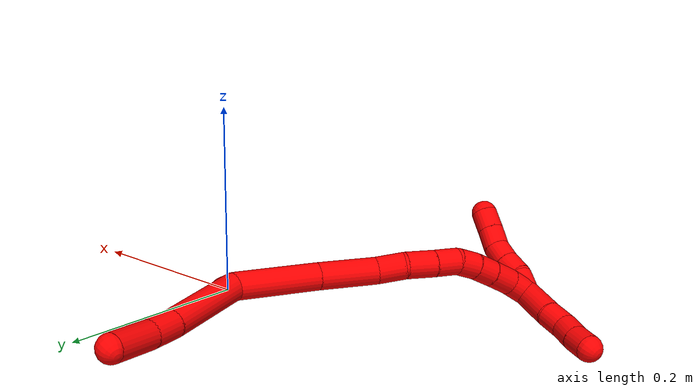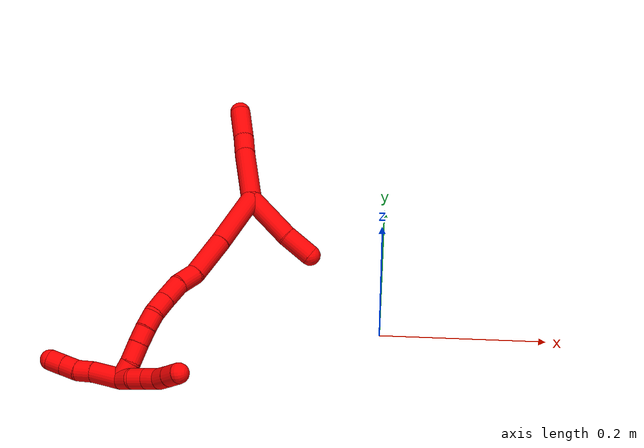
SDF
<sdf version="1.7">
 <world name="default">
  <model name="2">
   <static>0</static>
   <link name="2">
    <collision name="collision-cylinder-e_1_2_8">
     <pose>0.01176 0.036338 -0.012942 -1.91293 0.295919 -0.416475</pose>
     <geometry><cylinder><radius>0.0125</radius><length>0.080654</length></cylinder></geometry>
     <surface>
      <friction><ode><mu>1.16</mu><mu2>1.16</mu2><slip1>0</slip1><slip2>0</slip2></ode></friction>
      <contact><ode><kp>1e+06</kp><kd>1</kd><max_vel>0</max_vel><min_depth>0.001</min_depth></ode></contact>
     </surface>
    </collision>
    <visual name="visual-cylinder-e_1_2_8">
     <pose>0.01176 0.036338 -0.012942 -1.91293 0.295919 -0.416475</pose>
     <geometry><cylinder><radius>0.0125</radius><length>0.080654</length></cylinder></geometry>
     <material><ambient>1 0 0 1</ambient></material>
    </visual>
    <collision name="collision-cylinder-e_2_8_9">
     <pose>0.026761 0.085131 -0.029377 -1.84434 0.245491 -0.322657</pose>
     <geometry><cylinder><radius>0.0125</radius><length>0.026669</length></cylinder></geometry>
     <surface>
      <friction><ode><mu>1.16</mu><mu2>1.16</mu2><slip1>0</slip1><slip2>0</slip2></ode></friction>
      <contact><ode><kp>1e+06</kp><kd>1</kd><max_vel>0</max_vel><min_depth>0.001</min_depth></ode></contact>
     </surface>
    </collision>
    <visual name="visual-cylinder-e_2_8_9">
     <pose>0.026761 0.085131 -0.029377 -1.84434 0.245491 -0.322657</pose>
     <geometry><cylinder><radius>0.0125</radius><length>0.026669</length></cylinder></geometry>
     <material><ambient>1 0 0 1</ambient></material>
    </visual>
    <collision name="collision-cylinder-e_3_9_6">
     <pose>0.032804 0.117959 -0.038559 -1.84302 0.131714 -0.173335</pose>
     <geometry><cylinder><radius>0.0125</radius><length>0.042677</length></cylinder></geometry>
     <surface>
      <friction><ode><mu>1.16</mu><mu2>1.16</mu2><slip1>0</slip1><slip2>0</slip2></ode></friction>
      <contact><ode><kp>1e+06</kp><kd>1</kd><max_vel>0</max_vel><min_depth>0.001</min_depth></ode></contact>
     </surface>
    </collision>
    <visual name="visual-cylinder-e_3_9_6">
     <pose>0.032804 0.117959 -0.038559 -1.84302 0.131714 -0.173335</pose>
     <geometry><cylinder><radius>0.0125</radius><length>0.042677</length></cylinder></geometry>
     <material><ambient>1 0 0 1</ambient></material>
    </visual>
    <collision name="collision-cylinder-e_1_2_10">
     <pose>0.01263 -0.020689 0.02005 0.801074 0.41316 0.177011</pose>
     <geometry><cylinder><radius>0.0125</radius><length>0.062914</length></cylinder></geometry>
     <surface>
      <friction><ode><mu>1.16</mu><mu2>1.16</mu2><slip1>0</slip1><slip2>0</slip2></ode></friction>
      <contact><ode><kp>1e+06</kp><kd>1</kd><max_vel>0</max_vel><min_depth>0.001</min_depth></ode></contact>
     </surface>
    </collision>
    <visual name="visual-cylinder-e_1_2_10">
     <pose>0.01263 -0.020689 0.02005 0.801074 0.41316 0.177011</pose>
     <geometry><cylinder><radius>0.0125</radius><length>0.062914</length></cylinder></geometry>
     <material><ambient>1 0 0 1</ambient></material>
    </visual>
    <collision name="collision-cylinder-e_2_10_5">
     <pose>0.034408 -0.051385 0.052749 0.669351 0.515896 0.182982</pose>
     <geometry><cylinder><radius>0.0125</radius><length>0.037086</length></cylinder></geometry>
     <surface>
      <friction><ode><mu>1.16</mu><mu2>1.16</mu2><slip1>0</slip1><slip2>0</slip2></ode></friction>
      <contact><ode><kp>1e+06</kp><kd>1</kd><max_vel>0</max_vel><min_depth>0.001</min_depth></ode></contact>
     </surface>
    </collision>
    <visual name="visual-cylinder-e_2_10_5">
     <pose>0.034408 -0.051385 0.052749 0.669351 0.515896 0.182982</pose>
     <geometry><cylinder><radius>0.0125</radius><length>0.037086</length></cylinder></geometry>
     <material><ambient>1 0 0 1</ambient></material>
    </visual>
    <collision name="collision-cylinder-e_1_2_11">
     <pose>-0.015167 -0.034398 -0.010821 1.87558 -0.398156 -0.536669</pose>
     <geometry><cylinder><radius>0.0125</radius><length>0.078239</length></cylinder></geometry>
     <surface>
      <friction><ode><mu>1.16</mu><mu2>1.16</mu2><slip1>0</slip1><slip2>0</slip2></ode></friction>
      <contact><ode><kp>1e+06</kp><kd>1</kd><max_vel>0</max_vel><min_depth>0.001</min_depth></ode></contact>
     </surface>
    </collision>
    <visual name="visual-cylinder-e_1_2_11">
     <pose>-0.015167 -0.034398 -0.010821 1.87558 -0.398156 -0.536669</pose>
     <geometry><cylinder><radius>0.0125</radius><length>0.078239</length></cylinder></geometry>
     <material><ambient>1 0 0 1</ambient></material>
    </visual>
    <collision name="collision-cylinder-e_2_11_12">
     <pose>-0.041338 -0.093215 -0.030591 1.92206 -0.40023 -0.565158</pose>
     <geometry><cylinder><radius>0.0125</radius><length>0.056478</length></cylinder></geometry>
     <surface>
      <friction><ode><mu>1.16</mu><mu2>1.16</mu2><slip1>0</slip1><slip2>0</slip2></ode></friction>
      <contact><ode><kp>1e+06</kp><kd>1</kd><max_vel>0</max_vel><min_depth>0.001</min_depth></ode></contact>
     </surface>
    </collision>
    <visual name="visual-cylinder-e_2_11_12">
     <pose>-0.041338 -0.093215 -0.030591 1.92206 -0.40023 -0.565158</pose>
     <geometry><cylinder><radius>0.0125</radius><length>0.056478</length></cylinder></geometry>
     <material><ambient>1 0 0 1</ambient></material>
    </visual>
    <collision name="collision-cylinder-e_3_12_13">
     <pose>-0.059923 -0.126839 -0.045637 2.15586 -0.601767 -1.04783</pose>
     <geometry><cylinder><radius>0.0125</radius><length>0.026789</length></cylinder></geometry>
     <surface>
      <friction><ode><mu>1.16</mu><mu2>1.16</mu2><slip1>0</slip1><slip2>0</slip2></ode></friction>
      <contact><ode><kp>1e+06</kp><kd>1</kd><max_vel>0</max_vel><min_depth>0.001</min_depth></ode></contact>
     </surface>
    </collision>
    <visual name="visual-cylinder-e_3_12_13">
     <pose>-0.059923 -0.126839 -0.045637 2.15586 -0.601767 -1.04783</pose>
     <geometry><cylinder><radius>0.0125</radius><length>0.026789</length></cylinder></geometry>
     <material><ambient>1 0 0 1</ambient></material>
    </visual>
    <collision name="collision-cylinder-e_4_13_14">
     <pose>-0.073034 -0.148003 -0.05691 1.97922 -0.401242 -0.600457</pose>
     <geometry><cylinder><radius>0.0125</radius><length>0.028309</length></cylinder></geometry>
     <surface>
      <friction><ode><mu>1.16</mu><mu2>1.16</mu2><slip1>0</slip1><slip2>0</slip2></ode></friction>
      <contact><ode><kp>1e+06</kp><kd>1</kd><max_vel>0</max_vel><min_depth>0.001</min_depth></ode></contact>
     </surface>
    </collision>
    <visual name="visual-cylinder-e_4_13_14">
     <pose>-0.073034 -0.148003 -0.05691 1.97922 -0.401242 -0.600457</pose>
     <geometry><cylinder><radius>0.0125</radius><length>0.028309</length></cylinder></geometry>
     <material><ambient>1 0 0 1</ambient></material>
    </visual>
    <collision name="collision-cylinder-e_5_14_15">
     <pose>-0.08323 -0.170119 -0.065848 1.92559 -0.406911 -0.576386</pose>
     <geometry><cylinder><radius>0.0125</radius><length>0.02359</length></cylinder></geometry>
     <surface>
      <friction><ode><mu>1.16</mu><mu2>1.16</mu2><slip1>0</slip1><slip2>0</slip2></ode></friction>
      <contact><ode><kp>1e+06</kp><kd>1</kd><max_vel>0</max_vel><min_depth>0.001</min_depth></ode></contact>
     </surface>
    </collision>
    <visual name="visual-cylinder-e_5_14_15">
     <pose>-0.08323 -0.170119 -0.065848 1.92559 -0.406911 -0.576386</pose>
     <geometry><cylinder><radius>0.0125</radius><length>0.02359</length></cylinder></geometry>
     <material><ambient>1 0 0 1</ambient></material>
    </visual>
    <collision name="collision-cylinder-e_6_15_16">
     <pose>-0.088644 -0.189527 -0.073448 1.96388 -0.074318 -0.111207</pose>
     <geometry><cylinder><radius>0.0125</radius><length>0.020085</length></cylinder></geometry>
     <surface>
      <friction><ode><mu>1.16</mu><mu2>1.16</mu2><slip1>0</slip1><slip2>0</slip2></ode></friction>
      <contact><ode><kp>1e+06</kp><kd>1</kd><max_vel>0</max_vel><min_depth>0.001</min_depth></ode></contact>
     </surface>
    </collision>
    <visual name="visual-cylinder-e_6_15_16">
     <pose>-0.088644 -0.189527 -0.073448 1.96388 -0.074318 -0.111207</pose>
     <geometry><cylinder><radius>0.0125</radius><length>0.020085</length></cylinder></geometry>
     <material><ambient>1 0 0 1</ambient></material>
    </visual>
    <collision name="collision-cylinder-e_7_16_17">
     <pose>-0.08881 -0.208045 -0.08119 1.96977 0.05755 0.086687</pose>
     <geometry><cylinder><radius>0.0125</radius><length>0.020147</length></cylinder></geometry>
     <surface>
      <friction><ode><mu>1.16</mu><mu2>1.16</mu2><slip1>0</slip1><slip2>0</slip2></ode></friction>
      <contact><ode><kp>1e+06</kp><kd>1</kd><max_vel>0</max_vel><min_depth>0.001</min_depth></ode></contact>
     </surface>
    </collision>
    <visual name="visual-cylinder-e_7_16_17">
     <pose>-0.08881 -0.208045 -0.08119 1.96977 0.05755 0.086687</pose>
     <geometry><cylinder><radius>0.0125</radius><length>0.020147</length></cylinder></geometry>
     <material><ambient>1 0 0 1</ambient></material>
    </visual>
    <collision name="collision-cylinder-e_8_17_18">
     <pose>-0.087143 -0.228651 -0.089566 1.94625 0.089013 0.130663</pose>
     <geometry><cylinder><radius>0.0125</radius><length>0.024472</length></cylinder></geometry>
     <surface>
      <friction><ode><mu>1.16</mu><mu2>1.16</mu2><slip1>0</slip1><slip2>0</slip2></ode></friction>
      <contact><ode><kp>1e+06</kp><kd>1</kd><max_vel>0</max_vel><min_depth>0.001</min_depth></ode></contact>
     </surface>
    </collision>
    <visual name="visual-cylinder-e_8_17_18">
     <pose>-0.087143 -0.228651 -0.089566 1.94625 0.089013 0.130663</pose>
     <geometry><cylinder><radius>0.0125</radius><length>0.024472</length></cylinder></geometry>
     <material><ambient>1 0 0 1</ambient></material>
    </visual>
    <collision name="collision-cylinder-e_9_18_1">
     <pose>-0.084353 -0.249241 -0.099629 2.1146 0.156144 0.275675</pose>
     <geometry><cylinder><radius>0.0125</radius><length>0.02189</length></cylinder></geometry>
     <surface>
      <friction><ode><mu>1.16</mu><mu2>1.16</mu2><slip1>0</slip1><slip2>0</slip2></ode></friction>
      <contact><ode><kp>1e+06</kp><kd>1</kd><max_vel>0</max_vel><min_depth>0.001</min_depth></ode></contact>
     </surface>
    </collision>
    <visual name="visual-cylinder-e_9_18_1">
     <pose>-0.084353 -0.249241 -0.099629 2.1146 0.156144 0.275675</pose>
     <geometry><cylinder><radius>0.0125</radius><length>0.02189</length></cylinder></geometry>
     <material><ambient>1 0 0 1</ambient></material>
    </visual>
    <collision name="collision-cylinder-e_1_1_19">
     <pose>-0.086666 -0.260288 -0.096242 0.197178 -0.413081 -0.041443</pose>
     <geometry><cylinder><radius>0.0125</radius><length>0.02</length></cylinder></geometry>
     <surface>
      <friction><ode><mu>1.16</mu><mu2>1.16</mu2><slip1>0</slip1><slip2>0</slip2></ode></friction>
      <contact><ode><kp>1e+06</kp><kd>1</kd><max_vel>0</max_vel><min_depth>0.001</min_depth></ode></contact>
     </surface>
    </collision>
    <visual name="visual-cylinder-e_1_1_19">
     <pose>-0.086666 -0.260288 -0.096242 0.197178 -0.413081 -0.041443</pose>
     <geometry><cylinder><radius>0.0125</radius><length>0.02</length></cylinder></geometry>
     <material><ambient>1 0 0 1</ambient></material>
    </visual>
    <collision name="collision-cylinder-e_2_19_20">
     <pose>-0.09188 -0.263072 -0.077382 0.099836 -0.120248 -0.006015</pose>
     <geometry><cylinder><radius>0.0125</radius><length>0.02</length></cylinder></geometry>
     <surface>
      <friction><ode><mu>1.16</mu><mu2>1.16</mu2><slip1>0</slip1><slip2>0</slip2></ode></friction>
      <contact><ode><kp>1e+06</kp><kd>1</kd><max_vel>0</max_vel><min_depth>0.001</min_depth></ode></contact>
     </surface>
    </collision>
    <visual name="visual-cylinder-e_2_19_20">
     <pose>-0.09188 -0.263072 -0.077382 0.099836 -0.120248 -0.006015</pose>
     <geometry><cylinder><radius>0.0125</radius><length>0.02</length></cylinder></geometry>
     <material><ambient>1 0 0 1</ambient></material>
    </visual>
    <collision name="collision-cylinder-e_3_20_21">
     <pose>-0.095307 -0.265647 -0.057885 0.163352 -0.22462 -0.018464</pose>
     <geometry><cylinder><radius>0.0125</radius><length>0.02</length></cylinder></geometry>
     <surface>
      <friction><ode><mu>1.16</mu><mu2>1.16</mu2><slip1>0</slip1><slip2>0</slip2></ode></friction>
      <contact><ode><kp>1e+06</kp><kd>1</kd><max_vel>0</max_vel><min_depth>0.001</min_depth></ode></contact>
     </surface>
    </collision>
    <visual name="visual-cylinder-e_3_20_21">
     <pose>-0.095307 -0.265647 -0.057885 0.163352 -0.22462 -0.018464</pose>
     <geometry><cylinder><radius>0.0125</radius><length>0.02</length></cylinder></geometry>
     <material><ambient>1 0 0 1</ambient></material>
    </visual>
    <collision name="collision-cylinder-e_4_21_22">
     <pose>-0.102679 -0.268006 -0.039726 0.090373 -0.540429 -0.025048</pose>
     <geometry><cylinder><radius>0.0125</radius><length>0.02</length></cylinder></geometry>
     <surface>
      <friction><ode><mu>1.16</mu><mu2>1.16</mu2><slip1>0</slip1><slip2>0</slip2></ode></friction>
      <contact><ode><kp>1e+06</kp><kd>1</kd><max_vel>0</max_vel><min_depth>0.001</min_depth></ode></contact>
     </surface>
    </collision>
    <visual name="visual-cylinder-e_4_21_22">
     <pose>-0.102679 -0.268006 -0.039726 0.090373 -0.540429 -0.025048</pose>
     <geometry><cylinder><radius>0.0125</radius><length>0.02</length></cylinder></geometry>
     <material><ambient>1 0 0 1</ambient></material>
    </visual>
    <collision name="collision-cylinder-e_5_22_4">
     <pose>-0.112845 -0.269327 -0.022555 0.06327 -0.526006 -0.01704</pose>
     <geometry><cylinder><radius>0.0125</radius><length>0.02</length></cylinder></geometry>
     <surface>
      <friction><ode><mu>1.16</mu><mu2>1.16</mu2><slip1>0</slip1><slip2>0</slip2></ode></friction>
      <contact><ode><kp>1e+06</kp><kd>1</kd><max_vel>0</max_vel><min_depth>0.001</min_depth></ode></contact>
     </surface>
    </collision>
    <visual name="visual-cylinder-e_5_22_4">
     <pose>-0.112845 -0.269327 -0.022555 0.06327 -0.526006 -0.01704</pose>
     <geometry><cylinder><radius>0.0125</radius><length>0.02</length></cylinder></geometry>
     <material><ambient>1 0 0 1</ambient></material>
    </visual>
    <collision name="collision-cylinder-e_1_1_23">
     <pose>-0.082812 -0.253069 -0.123827 -2.85785 -0.008289 0.058017</pose>
     <geometry><cylinder><radius>0.0125</radius><length>0.038758</length></cylinder></geometry>
     <surface>
      <friction><ode><mu>1.16</mu><mu2>1.16</mu2><slip1>0</slip1><slip2>0</slip2></ode></friction>
      <contact><ode><kp>1e+06</kp><kd>1</kd><max_vel>0</max_vel><min_depth>0.001</min_depth></ode></contact>
     </surface>
    </collision>
    <visual name="visual-cylinder-e_1_1_23">
     <pose>-0.082812 -0.253069 -0.123827 -2.85785 -0.008289 0.058017</pose>
     <geometry><cylinder><radius>0.0125</radius><length>0.038758</length></cylinder></geometry>
     <material><ambient>1 0 0 1</ambient></material>
    </visual>
    <collision name="collision-cylinder-e_2_23_24">
     <pose>-0.08324 -0.24622 -0.152934 -3.00681 -0.025184 0.368903</pose>
     <geometry><cylinder><radius>0.0125</radius><length>0.021206</length></cylinder></geometry>
     <surface>
      <friction><ode><mu>1.16</mu><mu2>1.16</mu2><slip1>0</slip1><slip2>0</slip2></ode></friction>
      <contact><ode><kp>1e+06</kp><kd>1</kd><max_vel>0</max_vel><min_depth>0.001</min_depth></ode></contact>
     </surface>
    </collision>
    <visual name="visual-cylinder-e_2_23_24">
     <pose>-0.08324 -0.24622 -0.152934 -3.00681 -0.025184 0.368903</pose>
     <geometry><cylinder><radius>0.0125</radius><length>0.021206</length></cylinder></geometry>
     <material><ambient>1 0 0 1</ambient></material>
    </visual>
    <collision name="collision-cylinder-e_3_24_25">
     <pose>-0.083587 -0.241009 -0.172696 -2.75338 -0.008008 0.040731</pose>
     <geometry><cylinder><radius>0.0125</radius><length>0.020007</length></cylinder></geometry>
     <surface>
      <friction><ode><mu>1.16</mu><mu2>1.16</mu2><slip1>0</slip1><slip2>0</slip2></ode></friction>
      <contact><ode><kp>1e+06</kp><kd>1</kd><max_vel>0</max_vel><min_depth>0.001</min_depth></ode></contact>
     </surface>
    </collision>
    <visual name="visual-cylinder-e_3_24_25">
     <pose>-0.083587 -0.241009 -0.172696 -2.75338 -0.008008 0.040731</pose>
     <geometry><cylinder><radius>0.0125</radius><length>0.020007</length></cylinder></geometry>
     <material><ambient>1 0 0 1</ambient></material>
    </visual>
    <collision name="collision-cylinder-e_4_25_3">
     <pose>-0.084849 -0.233622 -0.191225 -2.77117 -0.11833 0.612422</pose>
     <geometry><cylinder><radius>0.0125</radius><length>0.020029</length></cylinder></geometry>
     <surface>
      <friction><ode><mu>1.16</mu><mu2>1.16</mu2><slip1>0</slip1><slip2>0</slip2></ode></friction>
      <contact><ode><kp>1e+06</kp><kd>1</kd><max_vel>0</max_vel><min_depth>0.001</min_depth></ode></contact>
     </surface>
    </collision>
    <visual name="visual-cylinder-e_4_25_3">
     <pose>-0.084849 -0.233622 -0.191225 -2.77117 -0.11833 0.612422</pose>
     <geometry><cylinder><radius>0.0125</radius><length>0.020029</length></cylinder></geometry>
     <material><ambient>1 0 0 1</ambient></material>
    </visual>
    <collision name="collision-sphere-3">
     <pose>-0.086031 -0.230022 -0.200495 0 -0 0</pose>
     <geometry><sphere><radius>0.0125</radius></sphere></geometry>
     <surface>
      <friction><ode><mu>1.16</mu><mu2>1.16</mu2><slip1>0</slip1><slip2>0</slip2></ode></friction>
      <contact><ode><kp>1e+06</kp><kd>1</kd><max_vel>0</max_vel><min_depth>0.001</min_depth></ode></contact>
     </surface>
    </collision>
    <visual name="visual-sphere-3">
     <pose>-0.086031 -0.230022 -0.200495 0 -0 0</pose>
     <geometry><sphere><radius>0.0125</radius></sphere></geometry>
     <material><ambient>1 0 0 1</ambient></material>
    </visual>
    <collision name="collision-sphere-25">
     <pose>-0.083667 -0.237222 -0.181955 0 -0 0</pose>
     <geometry><sphere><radius>0.0125</radius></sphere></geometry>
     <surface>
      <friction><ode><mu>1.16</mu><mu2>1.16</mu2><slip1>0</slip1><slip2>0</slip2></ode></friction>
      <contact><ode><kp>1e+06</kp><kd>1</kd><max_vel>0</max_vel><min_depth>0.001</min_depth></ode></contact>
     </surface>
    </collision>
    <visual name="visual-sphere-25">
     <pose>-0.083667 -0.237222 -0.181955 0 -0 0</pose>
     <geometry><sphere><radius>0.0125</radius></sphere></geometry>
     <material><ambient>1 0 0 1</ambient></material>
    </visual>
    <collision name="collision-sphere-24">
     <pose>-0.083507 -0.244795 -0.163438 0 -0 0</pose>
     <geometry><sphere><radius>0.0125</radius></sphere></geometry>
     <surface>
      <friction><ode><mu>1.16</mu><mu2>1.16</mu2><slip1>0</slip1><slip2>0</slip2></ode></friction>
      <contact><ode><kp>1e+06</kp><kd>1</kd><max_vel>0</max_vel><min_depth>0.001</min_depth></ode></contact>
     </surface>
    </collision>
    <visual name="visual-sphere-24">
     <pose>-0.083507 -0.244795 -0.163438 0 -0 0</pose>
     <geometry><sphere><radius>0.0125</radius></sphere></geometry>
     <material><ambient>1 0 0 1</ambient></material>
    </visual>
    <collision name="collision-sphere-23">
     <pose>-0.082973 -0.247644 -0.14243 0 -0 0</pose>
     <geometry><sphere><radius>0.0125</radius></sphere></geometry>
     <surface>
      <friction><ode><mu>1.16</mu><mu2>1.16</mu2><slip1>0</slip1><slip2>0</slip2></ode></friction>
      <contact><ode><kp>1e+06</kp><kd>1</kd><max_vel>0</max_vel><min_depth>0.001</min_depth></ode></contact>
     </surface>
    </collision>
    <visual name="visual-sphere-23">
     <pose>-0.082973 -0.247644 -0.14243 0 -0 0</pose>
     <geometry><sphere><radius>0.0125</radius></sphere></geometry>
     <material><ambient>1 0 0 1</ambient></material>
    </visual>
    <collision name="collision-sphere-4">
     <pose>-0.117866 -0.269874 -0.013924 0 -0 0</pose>
     <geometry><sphere><radius>0.0125</radius></sphere></geometry>
     <surface>
      <friction><ode><mu>1.16</mu><mu2>1.16</mu2><slip1>0</slip1><slip2>0</slip2></ode></friction>
      <contact><ode><kp>1e+06</kp><kd>1</kd><max_vel>0</max_vel><min_depth>0.001</min_depth></ode></contact>
     </surface>
    </collision>
    <visual name="visual-sphere-4">
     <pose>-0.117866 -0.269874 -0.013924 0 -0 0</pose>
     <geometry><sphere><radius>0.0125</radius></sphere></geometry>
     <material><ambient>1 0 0 1</ambient></material>
    </visual>
    <collision name="collision-sphere-22">
     <pose>-0.107824 -0.26878 -0.031186 0 -0 0</pose>
     <geometry><sphere><radius>0.0125</radius></sphere></geometry>
     <surface>
      <friction><ode><mu>1.16</mu><mu2>1.16</mu2><slip1>0</slip1><slip2>0</slip2></ode></friction>
      <contact><ode><kp>1e+06</kp><kd>1</kd><max_vel>0</max_vel><min_depth>0.001</min_depth></ode></contact>
     </surface>
    </collision>
    <visual name="visual-sphere-22">
     <pose>-0.107824 -0.26878 -0.031186 0 -0 0</pose>
     <geometry><sphere><radius>0.0125</radius></sphere></geometry>
     <material><ambient>1 0 0 1</ambient></material>
    </visual>
    <collision name="collision-sphere-21">
     <pose>-0.097534 -0.267232 -0.048266 0 -0 0</pose>
     <geometry><sphere><radius>0.0125</radius></sphere></geometry>
     <surface>
      <friction><ode><mu>1.16</mu><mu2>1.16</mu2><slip1>0</slip1><slip2>0</slip2></ode></friction>
      <contact><ode><kp>1e+06</kp><kd>1</kd><max_vel>0</max_vel><min_depth>0.001</min_depth></ode></contact>
     </surface>
    </collision>
    <visual name="visual-sphere-21">
     <pose>-0.097534 -0.267232 -0.048266 0 -0 0</pose>
     <geometry><sphere><radius>0.0125</radius></sphere></geometry>
     <material><ambient>1 0 0 1</ambient></material>
    </visual>
    <collision name="collision-sphere-20">
     <pose>-0.093079 -0.264061 -0.067504 0 -0 0</pose>
     <geometry><sphere><radius>0.0125</radius></sphere></geometry>
     <surface>
      <friction><ode><mu>1.16</mu><mu2>1.16</mu2><slip1>0</slip1><slip2>0</slip2></ode></friction>
      <contact><ode><kp>1e+06</kp><kd>1</kd><max_vel>0</max_vel><min_depth>0.001</min_depth></ode></contact>
     </surface>
    </collision>
    <visual name="visual-sphere-20">
     <pose>-0.093079 -0.264061 -0.067504 0 -0 0</pose>
     <geometry><sphere><radius>0.0125</radius></sphere></geometry>
     <material><ambient>1 0 0 1</ambient></material>
    </visual>
    <collision name="collision-sphere-5">
     <pose>0.043555 -0.061393 0.065398 0 -0 0</pose>
     <geometry><sphere><radius>0.0125</radius></sphere></geometry>
     <surface>
      <friction><ode><mu>1.16</mu><mu2>1.16</mu2><slip1>0</slip1><slip2>0</slip2></ode></friction>
      <contact><ode><kp>1e+06</kp><kd>1</kd><max_vel>0</max_vel><min_depth>0.001</min_depth></ode></contact>
     </surface>
    </collision>
    <visual name="visual-sphere-5">
     <pose>0.043555 -0.061393 0.065398 0 -0 0</pose>
     <geometry><sphere><radius>0.0125</radius></sphere></geometry>
     <material><ambient>1 0 0 1</ambient></material>
    </visual>
    <collision name="collision-sphere-10">
     <pose>0.02526 -0.041377 0.0401 0 -0 0</pose>
     <geometry><sphere><radius>0.0125</radius></sphere></geometry>
     <surface>
      <friction><ode><mu>1.16</mu><mu2>1.16</mu2><slip1>0</slip1><slip2>0</slip2></ode></friction>
      <contact><ode><kp>1e+06</kp><kd>1</kd><max_vel>0</max_vel><min_depth>0.001</min_depth></ode></contact>
     </surface>
    </collision>
    <visual name="visual-sphere-10">
     <pose>0.02526 -0.041377 0.0401 0 -0 0</pose>
     <geometry><sphere><radius>0.0125</radius></sphere></geometry>
     <material><ambient>1 0 0 1</ambient></material>
    </visual>
    <collision name="collision-sphere-6">
     <pose>0.035607 0.138334 -0.044247 0 -0 0</pose>
     <geometry><sphere><radius>0.0125</radius></sphere></geometry>
     <surface>
      <friction><ode><mu>1.16</mu><mu2>1.16</mu2><slip1>0</slip1><slip2>0</slip2></ode></friction>
      <contact><ode><kp>1e+06</kp><kd>1</kd><max_vel>0</max_vel><min_depth>0.001</min_depth></ode></contact>
     </surface>
    </collision>
    <visual name="visual-sphere-6">
     <pose>0.035607 0.138334 -0.044247 0 -0 0</pose>
     <geometry><sphere><radius>0.0125</radius></sphere></geometry>
     <material><ambient>1 0 0 1</ambient></material>
    </visual>
    <collision name="collision-sphere-9">
     <pose>0.030002 0.097584 -0.032871 0 -0 0</pose>
     <geometry><sphere><radius>0.0125</radius></sphere></geometry>
     <surface>
      <friction><ode><mu>1.16</mu><mu2>1.16</mu2><slip1>0</slip1><slip2>0</slip2></ode></friction>
      <contact><ode><kp>1e+06</kp><kd>1</kd><max_vel>0</max_vel><min_depth>0.001</min_depth></ode></contact>
     </surface>
    </collision>
    <visual name="visual-sphere-9">
     <pose>0.030002 0.097584 -0.032871 0 -0 0</pose>
     <geometry><sphere><radius>0.0125</radius></sphere></geometry>
     <material><ambient>1 0 0 1</ambient></material>
    </visual>
    <collision name="collision-sphere-2">
     <geometry><sphere><radius>0.0125</radius></sphere></geometry>
     <surface>
      <friction><ode><mu>1.16</mu><mu2>1.16</mu2><slip1>0</slip1><slip2>0</slip2></ode></friction>
      <contact><ode><kp>1e+06</kp><kd>1</kd><max_vel>0</max_vel><min_depth>0.001</min_depth></ode></contact>
     </surface>
    </collision>
    <visual name="visual-sphere-2">
     <geometry><sphere><radius>0.0125</radius></sphere></geometry>
     <material><ambient>1 0 0 1</ambient></material>
    </visual>
    <collision name="collision-sphere-19">
     <pose>-0.09068 -0.262082 -0.087261 0 -0 0</pose>
     <geometry><sphere><radius>0.0125</radius></sphere></geometry>
     <surface>
      <friction><ode><mu>1.16</mu><mu2>1.16</mu2><slip1>0</slip1><slip2>0</slip2></ode></friction>
      <contact><ode><kp>1e+06</kp><kd>1</kd><max_vel>0</max_vel><min_depth>0.001</min_depth></ode></contact>
     </surface>
    </collision>
    <visual name="visual-sphere-19">
     <pose>-0.09068 -0.262082 -0.087261 0 -0 0</pose>
     <geometry><sphere><radius>0.0125</radius></sphere></geometry>
     <material><ambient>1 0 0 1</ambient></material>
    </visual>
    <collision name="collision-sphere-8">
     <pose>0.02352 0.072677 -0.025883 0 -0 0</pose>
     <geometry><sphere><radius>0.0125</radius></sphere></geometry>
     <surface>
      <friction><ode><mu>1.16</mu><mu2>1.16</mu2><slip1>0</slip1><slip2>0</slip2></ode></friction>
      <contact><ode><kp>1e+06</kp><kd>1</kd><max_vel>0</max_vel><min_depth>0.001</min_depth></ode></contact>
     </surface>
    </collision>
    <visual name="visual-sphere-8">
     <pose>0.02352 0.072677 -0.025883 0 -0 0</pose>
     <geometry><sphere><radius>0.0125</radius></sphere></geometry>
     <material><ambient>1 0 0 1</ambient></material>
    </visual>
    <collision name="collision-sphere-11">
     <pose>-0.030335 -0.068795 -0.021642 0 -0 0</pose>
     <geometry><sphere><radius>0.0125</radius></sphere></geometry>
     <surface>
      <friction><ode><mu>1.16</mu><mu2>1.16</mu2><slip1>0</slip1><slip2>0</slip2></ode></friction>
      <contact><ode><kp>1e+06</kp><kd>1</kd><max_vel>0</max_vel><min_depth>0.001</min_depth></ode></contact>
     </surface>
    </collision>
    <visual name="visual-sphere-11">
     <pose>-0.030335 -0.068795 -0.021642 0 -0 0</pose>
     <geometry><sphere><radius>0.0125</radius></sphere></geometry>
     <material><ambient>1 0 0 1</ambient></material>
    </visual>
    <collision name="collision-sphere-12">
     <pose>-0.052341 -0.117634 -0.03954 0 -0 0</pose>
     <geometry><sphere><radius>0.0125</radius></sphere></geometry>
     <surface>
      <friction><ode><mu>1.16</mu><mu2>1.16</mu2><slip1>0</slip1><slip2>0</slip2></ode></friction>
      <contact><ode><kp>1e+06</kp><kd>1</kd><max_vel>0</max_vel><min_depth>0.001</min_depth></ode></contact>
     </surface>
    </collision>
    <visual name="visual-sphere-12">
     <pose>-0.052341 -0.117634 -0.03954 0 -0 0</pose>
     <geometry><sphere><radius>0.0125</radius></sphere></geometry>
     <material><ambient>1 0 0 1</ambient></material>
    </visual>
    <collision name="collision-sphere-13">
     <pose>-0.067506 -0.136044 -0.051735 0 -0 0</pose>
     <geometry><sphere><radius>0.0125</radius></sphere></geometry>
     <surface>
      <friction><ode><mu>1.16</mu><mu2>1.16</mu2><slip1>0</slip1><slip2>0</slip2></ode></friction>
      <contact><ode><kp>1e+06</kp><kd>1</kd><max_vel>0</max_vel><min_depth>0.001</min_depth></ode></contact>
     </surface>
    </collision>
    <visual name="visual-sphere-13">
     <pose>-0.067506 -0.136044 -0.051735 0 -0 0</pose>
     <geometry><sphere><radius>0.0125</radius></sphere></geometry>
     <material><ambient>1 0 0 1</ambient></material>
    </visual>
    <collision name="collision-sphere-14">
     <pose>-0.078562 -0.159961 -0.062085 0 -0 0</pose>
     <geometry><sphere><radius>0.0125</radius></sphere></geometry>
     <surface>
      <friction><ode><mu>1.16</mu><mu2>1.16</mu2><slip1>0</slip1><slip2>0</slip2></ode></friction>
      <contact><ode><kp>1e+06</kp><kd>1</kd><max_vel>0</max_vel><min_depth>0.001</min_depth></ode></contact>
     </surface>
    </collision>
    <visual name="visual-sphere-14">
     <pose>-0.078562 -0.159961 -0.062085 0 -0 0</pose>
     <geometry><sphere><radius>0.0125</radius></sphere></geometry>
     <material><ambient>1 0 0 1</ambient></material>
    </visual>
    <collision name="collision-sphere-15">
     <pose>-0.087898 -0.180276 -0.069612 0 -0 0</pose>
     <geometry><sphere><radius>0.0125</radius></sphere></geometry>
     <surface>
      <friction><ode><mu>1.16</mu><mu2>1.16</mu2><slip1>0</slip1><slip2>0</slip2></ode></friction>
      <contact><ode><kp>1e+06</kp><kd>1</kd><max_vel>0</max_vel><min_depth>0.001</min_depth></ode></contact>
     </surface>
    </collision>
    <visual name="visual-sphere-15">
     <pose>-0.087898 -0.180276 -0.069612 0 -0 0</pose>
     <geometry><sphere><radius>0.0125</radius></sphere></geometry>
     <material><ambient>1 0 0 1</ambient></material>
    </visual>
    <collision name="collision-sphere-16">
     <pose>-0.08939 -0.198778 -0.077284 0 -0 0</pose>
     <geometry><sphere><radius>0.0125</radius></sphere></geometry>
     <surface>
      <friction><ode><mu>1.16</mu><mu2>1.16</mu2><slip1>0</slip1><slip2>0</slip2></ode></friction>
      <contact><ode><kp>1e+06</kp><kd>1</kd><max_vel>0</max_vel><min_depth>0.001</min_depth></ode></contact>
     </surface>
    </collision>
    <visual name="visual-sphere-16">
     <pose>-0.08939 -0.198778 -0.077284 0 -0 0</pose>
     <geometry><sphere><radius>0.0125</radius></sphere></geometry>
     <material><ambient>1 0 0 1</ambient></material>
    </visual>
    <collision name="collision-sphere-17">
     <pose>-0.088231 -0.217312 -0.085097 0 -0 0</pose>
     <geometry><sphere><radius>0.0125</radius></sphere></geometry>
     <surface>
      <friction><ode><mu>1.16</mu><mu2>1.16</mu2><slip1>0</slip1><slip2>0</slip2></ode></friction>
      <contact><ode><kp>1e+06</kp><kd>1</kd><max_vel>0</max_vel><min_depth>0.001</min_depth></ode></contact>
     </surface>
    </collision>
    <visual name="visual-sphere-17">
     <pose>-0.088231 -0.217312 -0.085097 0 -0 0</pose>
     <geometry><sphere><radius>0.0125</radius></sphere></geometry>
     <material><ambient>1 0 0 1</ambient></material>
    </visual>
    <collision name="collision-sphere-18">
     <pose>-0.086056 -0.239989 -0.094035 0 -0 0</pose>
     <geometry><sphere><radius>0.0125</radius></sphere></geometry>
     <surface>
      <friction><ode><mu>1.16</mu><mu2>1.16</mu2><slip1>0</slip1><slip2>0</slip2></ode></friction>
      <contact><ode><kp>1e+06</kp><kd>1</kd><max_vel>0</max_vel><min_depth>0.001</min_depth></ode></contact>
     </surface>
    </collision>
    <visual name="visual-sphere-18">
     <pose>-0.086056 -0.239989 -0.094035 0 -0 0</pose>
     <geometry><sphere><radius>0.0125</radius></sphere></geometry>
     <material><ambient>1 0 0 1</ambient></material>
    </visual>
    <collision name="collision-sphere-1">
     <pose>-0.082651 -0.258494 -0.105224 0 -0 0</pose>
     <geometry><sphere><radius>0.0125</radius></sphere></geometry>
     <surface>
      <friction><ode><mu>1.16</mu><mu2>1.16</mu2><slip1>0</slip1><slip2>0</slip2></ode></friction>
      <contact><ode><kp>1e+06</kp><kd>1</kd><max_vel>0</max_vel><min_depth>0.001</min_depth></ode></contact>
     </surface>
    </collision>
    <visual name="visual-sphere-1">
     <pose>-0.082651 -0.258494 -0.105224 0 -0 0</pose>
     <geometry><sphere><radius>0.0125</radius></sphere></geometry>
     <material><ambient>1 0 0 1</ambient></material>
    </visual>
    <inertial>
     <pose>-0.03961 -0.110181 -0.047872 0 -0 0</pose>
     <mass>0.75</mass>
     <inertia>
      <ixx>0.000104</ixx>
      <ixy>0</ixy>
      <ixz>0</ixz>
      <iyy>-5.9e-05</iyy>
      <iyz>0</iyz>
      <izz>2.3e-05</izz>
     </inertia>
    </inertial>
   </link>
   <pose>-0.161739 0.140962 0.080337 0.741468 1.10619 0.647718</pose>
  </model>
 </world>
</sdf>
